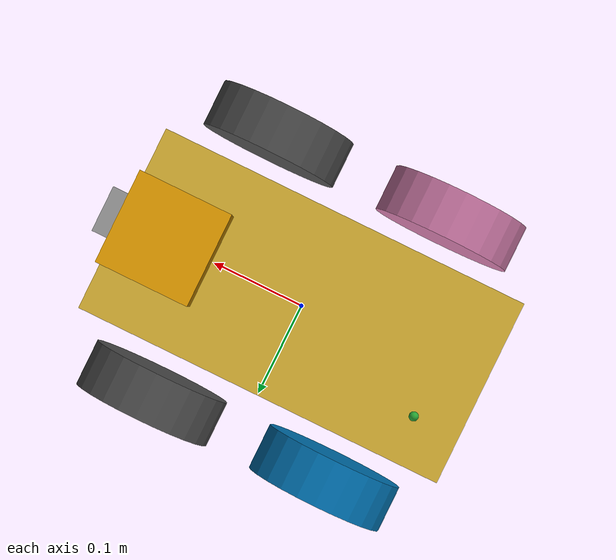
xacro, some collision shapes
<?xml version="1.0"?>

<robot name="my_robot" xmlns:xacro="http://www.ros.org/wiki/xacro">

    <xacro:include filename="$(find map_my_world)/urdf/my_robot.gazebo" />

    <link name="robot_footprint"/>

    <joint name="robot_footprint_joint" type="fixed">
        <origin xyz="0 0 0" rpy="0 0 0" />
        <parent link="robot_footprint"/>
        <child link="chassis" />
    </joint>

    <link name="chassis">
        <pose>0 0 0.1 0 0 0</pose>

        <inertial>
            <mass value="15.0"/>
            <origin xyz="0 0 0" rpy="0 0 0"/>
            <inertia
                    ixx="0.1" ixy="0" ixz="0"
                    iyy="0.1" iyz="0"
                    izz="0.1"
            />
        </inertial>

        <collision name="collision">
            <origin xyz="0 0 0" rpy=" 0 0 0"/>
            <geometry>
                <box size=".4 .2 .1"/>
            </geometry>
        </collision>

        <visual name="chassis_visual">
            <origin xyz="0 0 0" rpy=" 0 0 0"/>
            <geometry>
                <box size=".4 .2 .1"/>
            </geometry>
        </visual>

    </link>

    <link name="led_visual">
        <visual>
            <origin xyz="0 0 0" rpy="0 0 0"/>
            <geometry>
                <sphere radius="0.005"/>
            </geometry>
        </visual>
    </link>

    <joint type="fixed" name="led_visual_hinge">
        <origin xyz="-0.15 0.05 0.05" rpy=" 0 0 0"/>
        <child link="led_visual"/>
        <parent link="chassis"/>
        <axis xyz="0 0 1" rpy="0 0 0"/>
    </joint>

    <link name="front_left_wheel">
        <visual name="front_left_wheel_visual">
            <origin xyz="0 0 0" rpy="0 1.5707 1.5707"/>
            <geometry>
                <cylinder radius="0.075" length="0.05"/>
            </geometry>
        </visual>

        <collision name="front_left_wheel_collision">
            <origin xyz="0 0 0" rpy="0 1.5707 1.5707"/>
            <geometry>
                <cylinder radius="0.075" length="0.05"/>
            </geometry>
        </collision>

        <inertial>
            <origin xyz="0 0 0" rpy="0 1.5707 1.5707"/>
            <mass value="2.5"/>
            <inertia
                    ixx="0.1" ixy="0" ixz="0"
                    iyy="0.1" iyz="0"
                    izz="0.1"/>
        </inertial>
    </link>

    <link name="back_left_wheel">
        <visual name="front_left_wheel_visual">
            <origin xyz="0 0 0" rpy="0 1.5707 1.5707"/>
            <geometry>
                <cylinder radius="0.075" length="0.05"/>
            </geometry>
        </visual>

        <collision name="back_left_wheel_collision">
            <origin xyz="0 0 0" rpy="0 1.5707 1.5707"/>
            <geometry>
                <cylinder radius="0.075" length="0.05"/>
            </geometry>
        </collision>

        <inertial>
            <origin xyz="0 0 0" rpy="0 1.5707 1.5707"/>
            <mass value="2.5"/>
            <inertia
                    ixx="0.1" ixy="0" ixz="0"
                    iyy="0.1" iyz="0"
                    izz="0.1"/>
        </inertial>
    </link>

    <link name="front_right_wheel">
        <visual name="front_right_wheel_visual">
            <origin xyz="0 0 0" rpy="0 1.5707 1.5707"/>
            <geometry>
                <cylinder radius="0.075" length="0.05"/>
            </geometry>
        </visual>

        <collision name="front_right_wheel_collision">
            <origin xyz="0 0 0" rpy="0 1.5707 1.5707"/>
            <geometry>
                <cylinder radius="0.075" length="0.05"/>
            </geometry>
        </collision>

        <inertial>
            <origin xyz="0 0 0" rpy="0 1.5707 1.5707"/>
            <mass value="2.5"/>
            <inertia
                    ixx="0.1" ixy="0" ixz="0"
                    iyy="0.1" iyz="0"
                    izz="0.1"/>
        </inertial>
    </link>

    <link name="back_right_wheel">
        <visual name="back_right_wheel_visual">
            <origin xyz="0 0 0" rpy="0 1.5707 1.5707"/>
            <geometry>
                <cylinder radius="0.075" length="0.05"/>
            </geometry>
        </visual>

        <collision name="back_right_wheel_collision">
            <origin xyz="0 0 0" rpy="0 1.5707 1.5707"/>
            <geometry>
                <cylinder radius="0.075" length="0.05"/>
            </geometry>
        </collision>

        <inertial>
            <origin xyz="0 0 0" rpy="0 1.5707 1.5707"/>
            <mass value="2.5"/>
            <inertia
                    ixx="0.1" ixy="0" ixz="0"
                    iyy="0.1" iyz="0"
                    izz="0.1"/>
        </inertial>
    </link>

    <joint type="continuous" name="front_left_wheel_hinge">
        <origin xyz="0.1 0.15 -0.025" rpy="0 0 0"/>
        <child link="front_left_wheel"/>
        <parent link="chassis"/>
        <axis xyz="0 1 0" rpy="0 0 0"/>
        <limit effort="10000" velocity="1000"/>
        <dynamics damping="1.0" friction="1.0"/>
    </joint>

    <joint type="continuous" name="front_right_wheel_hinge">
        <origin xyz="0.1 -0.15 -0.025" rpy="0 0 0"/>
        <child link="front_right_wheel"/>
        <parent link="chassis"/>
        <axis xyz="0 1 0" rpy="0 0 0"/>
        <limit effort="10000" velocity="1000"/>
        <dynamics damping="1.0" friction="1.0"/>
    </joint>

    <joint type="continuous" name="back_left_wheel_hinge">
        <origin xyz="-0.1 0.15 -0.025" rpy="0 0 0"/>
        <child link="back_left_wheel"/>
        <parent link="chassis"/>
        <axis xyz="0 1 0" rpy="0 0 0"/>
        <limit effort="10000" velocity="1000"/>
        <dynamics damping="1.0" friction="1.0"/>
    </joint>

    <joint type="continuous" name="back_right_wheel_hinge">
        <origin xyz="-0.1 -0.15 -0.025" rpy="0 0 0"/>
        <child link="back_right_wheel"/>
        <parent link="chassis"/>
        <axis xyz="0 1 0" rpy="0 0 0"/>
        <limit effort="10000" velocity="1000"/>
        <dynamics damping="1.0" friction="1.0"/>
    </joint>

    <link name="camera">
        <visual>
            <origin xyz="0 0 0" rpy="0 0 0"/>
            <geometry>
                <box size="0.05 0.05 0.05"/>
            </geometry>
        </visual>

        <collision>
            <origin xyz="0 0 0" rpy="0 0 0"/>
            <geometry>
                <box size="0.05 0.05 0.05"/>
            </geometry>
        </collision>

        <inertial>
            <mass value="0.1"/>
            <origin xyz="0.0 0 0" rpy=" 0 0 0"/>
            <box_inertia
                    m="0.1" x="0.05" y="0.05" z="0.05"/>
            <inertia
                    ixx="1e-6" ixy="0" ixz="0"
                    iyy="1e-6" iyz="0"
                    izz="1e-6"
            />
        </inertial>
    </link>

    <joint type="fixed" name="camera_joint">
        <axis xyz="0 1 0" rpy="0 0 0"/>
        <origin xyz="0.2 0 0" rpy="0 0 0"/>
        <parent link="chassis"/>
        <child link="camera"/>
    </joint>

    <link name="hokuyo">
        <visual>
            <origin xyz="0 0 0" rpy="0 0 0"/>
            <geometry>
                <mesh filename="package://map_my_world/meshes/hokuyo.dae" />
            </geometry>
        </visual>

        <collision>
            <origin xyz="0 0 0" rpy="0 0 0"/>
            <geometry>
                <box size="0.1 0.1 0.1"/>
            </geometry>
        </collision>

        <inertial>
            <mass value="1e-5"/>
            <origin xyz="0.0 0 0" rpy=" 0 0 0"/>
            <inertia
                    ixx="1e-6" ixy="0" ixz="0"
                    iyy="1e-6" iyz="0"
                    izz="1e-6"
            />
        </inertial>
    </link>

    <joint type="fixed" name="hokuyo_joint">
        <axis xyz="0 1 0" rpy="0 0 0"/>
        <origin xyz="0.15 0 0.05" rpy="0 0 0"/>
        <parent link="chassis"/>
        <child link="hokuyo"/>
    </joint>

    <!-- An RGB-D camera required for the RTAB-Map package -->
    <link name="camera_link_optical">
    </link>

    <joint name="camera_optical_joint" type="fixed">
        <origin xyz="0 0 0" rpy="-1.5707 0 -1.5707"/>
        <parent link="camera"/>
        <child link="camera_link_optical"/>
    </joint>

    <gazebo reference="front_right_wheel">
        <material>Gazebo/DarkGrey</material>
    </gazebo>

    <gazebo reference="front_left_wheel">
        <material>Gazebo/DarkGrey</material>
    </gazebo>

    <gazebo reference="led_visual">
        <material>Gazebo/GreenGlow</material>
    </gazebo>

    <gazebo reference="chassis">
        <material>Gazebo/Gold</material>
    </gazebo>

    <gazebo reference="camera">
        <material>Gazebo/Grey</material>
    </gazebo>

</robot>
